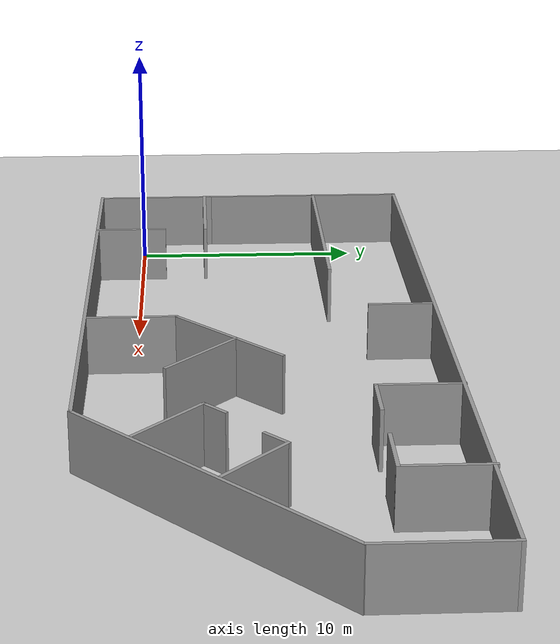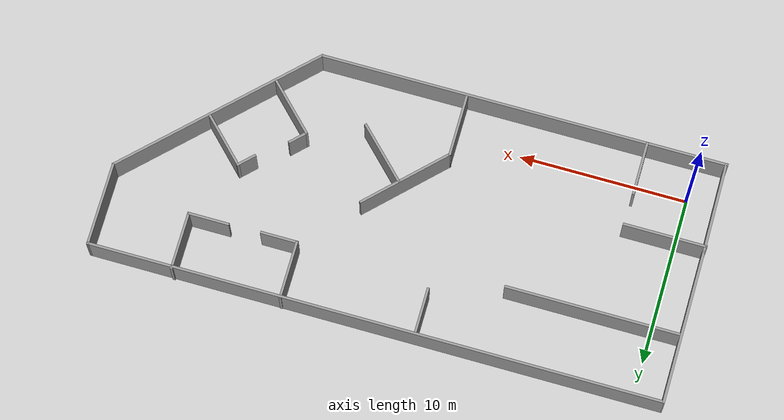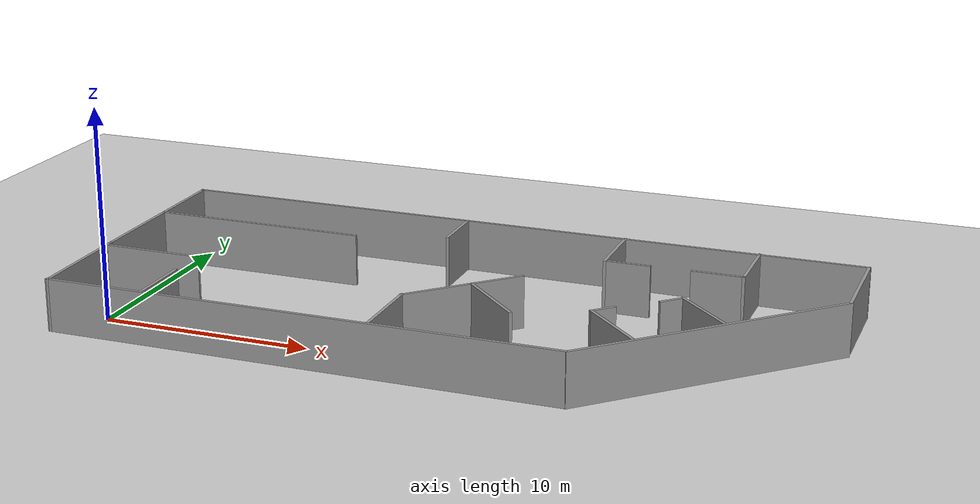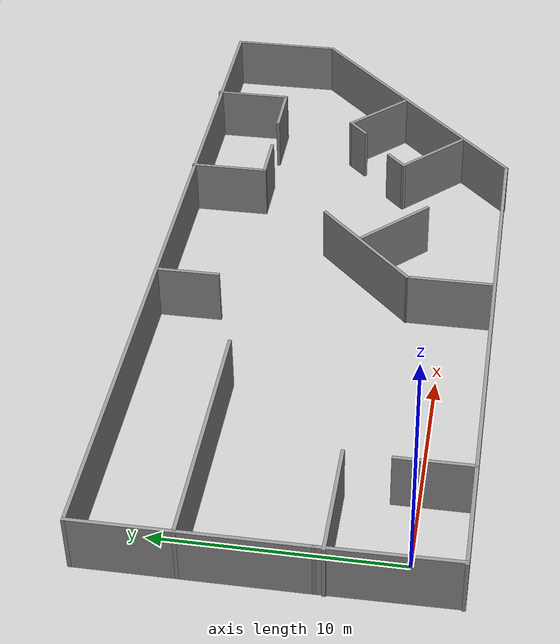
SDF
<sdf version="1.7">
 <world name="default">
  <model name="ground_plane">
   <static>1</static>
   <link name="link">
    <collision name="collision">
     <geometry><plane><normal>0 0 1</normal><size>100 100</size></plane></geometry>
     <surface>
      <contact><collide_bitmask>65535</collide_bitmask></contact>
      <friction><ode><mu>100</mu><mu2>50</mu2></ode></friction>
     </surface>
    </collision>
    <visual name="visual">
     <cast_shadows>0</cast_shadows>
     <geometry><plane><normal>0 0 1</normal><size>100 100</size></plane></geometry>
     <material>
      <script><uri>file://media/materials/scripts/gazebo.material</uri><name>Gazebo/Grey</name></script>
     </material>
    </visual>
   </link>
  </model>
  <light name="sun" type="directional">
   <pose>0 0 10 0 -0 0</pose>
   <diffuse>0.8 0.8 0.8 1</diffuse>
   <specular>0.2 0.2 0.2 1</specular>
   <attenuation>
    <range>1000</range>
    <constant>0.9</constant>
    <linear>0.01</linear>
    <quadratic>0.001</quadratic>
   </attenuation>
   <direction>-0.5 0.1 -0.9</direction>
   <spot><inner_angle>0</inner_angle><outer_angle>0</outer_angle><falloff>0</falloff></spot>
  </light>
  <spherical_coordinates>
   <surface_model>EARTH_WGS84</surface_model>
   <latitude_deg>47.3667</latitude_deg>
   <longitude_deg>8.55</longitude_deg>
   <elevation>500</elevation>
   <heading_deg>0</heading_deg>
  </spherical_coordinates>
  <physics type="ode">
   <ode>
    <solver>
     <type>quick</type>
     <iters>500</iters>
     <sor>1.3</sor>
     <use_dynamic_moi_rescaling>0</use_dynamic_moi_rescaling>
    </solver>
    <constraints>
     <cfm>0</cfm>
     <erp>0.2</erp>
     <contact_max_correcting_vel>100</contact_max_correcting_vel>
     <contact_surface_layer>0.001</contact_surface_layer>
    </constraints>
   </ode>
   <max_step_size>0.001</max_step_size>
   <real_time_factor>1</real_time_factor>
   <real_time_update_rate>1000</real_time_update_rate>
  </physics>
  <gravity>0 0 -9.8</gravity>
  <magnetic_field>6e-06 2.3e-05 -4.2e-05</magnetic_field>
  <atmosphere type="adiabatic"/>
  <scene><ambient>0.4 0.4 0.4 1</ambient><background>0.7 0.7 0.7 1</background><shadows>1</shadows></scene>
  <model name="environment6">
   <link name="Wall_12">
    <pose>-17.0013 2.66938 0 0 -0 1.5708</pose>
    <visual name="Wall_12_Visual">
     <pose>0 0 1.25 0 -0 0</pose>
     <geometry><box><size>9.25 0.15 2.5</size></box></geometry>
     <material>
      <script><uri>file://media/materials/scripts/gazebo.material</uri><name>Gazebo/Grey</name></script>
      <ambient>1 1 1 1</ambient>
      <shader type="pixel"/>
     </material>
     <meta><layer>0</layer></meta>
    </visual>
    <collision name="Wall_12_Collision">
     <pose>0 0 1.25 0 -0 0</pose>
     <geometry><box><size>9.25 0.15 2.5</size></box></geometry>
     <surface>
      <friction>
       <ode><mu>1</mu><mu2>1</mu2><fdir1>0 0 0</fdir1><slip1>0</slip1><slip2>0</slip2></ode>
       <torsional>
        <coefficient>1</coefficient>
        <patch_radius>0</patch_radius>
        <surface_radius>0</surface_radius>
        <use_patch_radius>1</use_patch_radius>
        <ode><slip>0</slip></ode>
       </torsional>
      </friction>
      <bounce><restitution_coefficient>0</restitution_coefficient><threshold>1e+06</threshold></bounce>
      <contact>
       <collide_without_contact>0</collide_without_contact>
       <collide_without_contact_bitmask>1</collide_without_contact_bitmask>
       <collide_bitmask>1</collide_bitmask>
       <ode>
        <soft_cfm>0</soft_cfm>
        <soft_erp>0.2</soft_erp>
        <kp>1e+13</kp>
        <kd>1</kd>
        <max_vel>0.01</max_vel>
        <min_depth>0</min_depth>
       </ode>
       <bullet>
        <split_impulse>1</split_impulse>
        <split_impulse_penetration_threshold>-0.01</split_impulse_penetration_threshold>
        <soft_cfm>0</soft_cfm>
        <soft_erp>0.2</soft_erp>
        <kp>1e+13</kp>
        <kd>1</kd>
       </bullet>
      </contact>
     </surface>
    </collision>
   </link>
   <link name="Wall_13">
    <pose>0.008656 7.22771 0 0 -0 0.000489</pose>
    <visual name="Wall_13_Visual">
     <pose>0 0 1.25 0 -0 0</pose>
     <geometry><box><size>34.1707 0.15 2.5</size></box></geometry>
     <material>
      <script><uri>file://media/materials/scripts/gazebo.material</uri><name>Gazebo/Grey</name></script>
      <ambient>1 1 1 1</ambient>
      <shader type="pixel"/>
     </material>
     <meta><layer>0</layer></meta>
    </visual>
    <collision name="Wall_13_Collision">
     <pose>0 0 1.25 0 -0 0</pose>
     <geometry><box><size>34.1707 0.15 2.5</size></box></geometry>
     <surface>
      <friction>
       <ode><mu>1</mu><mu2>1</mu2><fdir1>0 0 0</fdir1><slip1>0</slip1><slip2>0</slip2></ode>
       <torsional>
        <coefficient>1</coefficient>
        <patch_radius>0</patch_radius>
        <surface_radius>0</surface_radius>
        <use_patch_radius>1</use_patch_radius>
        <ode><slip>0</slip></ode>
       </torsional>
      </friction>
      <bounce><restitution_coefficient>0</restitution_coefficient><threshold>1e+06</threshold></bounce>
      <contact>
       <collide_without_contact>0</collide_without_contact>
       <collide_without_contact_bitmask>1</collide_without_contact_bitmask>
       <collide_bitmask>1</collide_bitmask>
       <ode>
        <soft_cfm>0</soft_cfm>
        <soft_erp>0.2</soft_erp>
        <kp>1e+13</kp>
        <kd>1</kd>
        <max_vel>0.01</max_vel>
        <min_depth>0</min_depth>
       </ode>
       <bullet>
        <split_impulse>1</split_impulse>
        <split_impulse_penetration_threshold>-0.01</split_impulse_penetration_threshold>
        <soft_cfm>0</soft_cfm>
        <soft_erp>0.2</soft_erp>
        <kp>1e+13</kp>
        <kd>1</kd>
       </bullet>
      </contact>
     </surface>
    </collision>
   </link>
   <link name="Wall_15">
    <pose>-14.6246 -2.23152 0 0 -0 0</pose>
    <visual name="Wall_15_Visual">
     <pose>0 0 1.25 0 -0 0</pose>
     <geometry><box><size>5 0.15 2.5</size></box></geometry>
     <material>
      <script><uri>file://media/materials/scripts/gazebo.material</uri><name>Gazebo/Grey</name></script>
      <ambient>1 1 1 1</ambient>
      <shader type="pixel"/>
     </material>
     <meta><layer>0</layer></meta>
    </visual>
    <collision name="Wall_15_Collision">
     <pose>0 0 1.25 0 -0 0</pose>
     <geometry><box><size>5 0.15 2.5</size></box></geometry>
     <surface>
      <friction>
       <ode><mu>1</mu><mu2>1</mu2><fdir1>0 0 0</fdir1><slip1>0</slip1><slip2>0</slip2></ode>
       <torsional>
        <coefficient>1</coefficient>
        <patch_radius>0</patch_radius>
        <surface_radius>0</surface_radius>
        <use_patch_radius>1</use_patch_radius>
        <ode><slip>0</slip></ode>
       </torsional>
      </friction>
      <bounce><restitution_coefficient>0</restitution_coefficient><threshold>1e+06</threshold></bounce>
      <contact>
       <collide_without_contact>0</collide_without_contact>
       <collide_without_contact_bitmask>1</collide_without_contact_bitmask>
       <collide_bitmask>1</collide_bitmask>
       <ode>
        <soft_cfm>0</soft_cfm>
        <soft_erp>0.2</soft_erp>
        <kp>1e+13</kp>
        <kd>1</kd>
        <max_vel>0.01</max_vel>
        <min_depth>0</min_depth>
       </ode>
       <bullet>
        <split_impulse>1</split_impulse>
        <split_impulse_penetration_threshold>-0.01</split_impulse_penetration_threshold>
        <soft_cfm>0</soft_cfm>
        <soft_erp>0.2</soft_erp>
        <kp>1e+13</kp>
        <kd>1</kd>
       </bullet>
      </contact>
     </surface>
    </collision>
   </link>
   <link name="Wall_18">
    <pose>-12.2496 -5.72152 0 0 -0 1.5708</pose>
    <visual name="Wall_18_Visual">
     <pose>0 0 1.25 0 -0 0</pose>
     <geometry><box><size>3.25 0.15 2.5</size></box></geometry>
     <material>
      <script><uri>file://media/materials/scripts/gazebo.material</uri><name>Gazebo/Grey</name></script>
      <ambient>1 1 1 1</ambient>
      <shader type="pixel"/>
     </material>
     <meta><layer>0</layer></meta>
    </visual>
    <collision name="Wall_18_Collision">
     <pose>0 0 1.25 0 -0 0</pose>
     <geometry><box><size>3.25 0.15 2.5</size></box></geometry>
     <surface>
      <friction>
       <ode><mu>1</mu><mu2>1</mu2><fdir1>0 0 0</fdir1><slip1>0</slip1><slip2>0</slip2></ode>
       <torsional>
        <coefficient>1</coefficient>
        <patch_radius>0</patch_radius>
        <surface_radius>0</surface_radius>
        <use_patch_radius>1</use_patch_radius>
        <ode><slip>0</slip></ode>
       </torsional>
      </friction>
      <bounce><restitution_coefficient>0</restitution_coefficient><threshold>1e+06</threshold></bounce>
      <contact>
       <collide_without_contact>0</collide_without_contact>
       <collide_without_contact_bitmask>1</collide_without_contact_bitmask>
       <collide_bitmask>1</collide_bitmask>
       <ode>
        <soft_cfm>0</soft_cfm>
        <soft_erp>0.2</soft_erp>
        <kp>1e+13</kp>
        <kd>1</kd>
        <max_vel>0.01</max_vel>
        <min_depth>0</min_depth>
       </ode>
       <bullet>
        <split_impulse>1</split_impulse>
        <split_impulse_penetration_threshold>-0.01</split_impulse_penetration_threshold>
        <soft_cfm>0</soft_cfm>
        <soft_erp>0.2</soft_erp>
        <kp>1e+13</kp>
        <kd>1</kd>
       </bullet>
      </contact>
     </surface>
    </collision>
   </link>
   <link name="Wall_20">
    <pose>-11.8269 3.17824 0 0 -0 0</pose>
    <visual name="Wall_20_Visual">
     <pose>0 0 1.25 0 -0 0</pose>
     <geometry><box><size>10.5 0.15 2.5</size></box></geometry>
     <material>
      <script><uri>file://media/materials/scripts/gazebo.material</uri><name>Gazebo/Grey</name></script>
      <ambient>1 1 1 1</ambient>
      <shader type="pixel"/>
     </material>
     <meta><layer>0</layer></meta>
    </visual>
    <collision name="Wall_20_Collision">
     <pose>0 0 1.25 0 -0 0</pose>
     <geometry><box><size>10.5 0.15 2.5</size></box></geometry>
     <surface>
      <friction>
       <ode><mu>1</mu><mu2>1</mu2><fdir1>0 0 0</fdir1><slip1>0</slip1><slip2>0</slip2></ode>
       <torsional>
        <coefficient>1</coefficient>
        <patch_radius>0</patch_radius>
        <surface_radius>0</surface_radius>
        <use_patch_radius>1</use_patch_radius>
        <ode><slip>0</slip></ode>
       </torsional>
      </friction>
      <bounce><restitution_coefficient>0</restitution_coefficient><threshold>1e+06</threshold></bounce>
      <contact>
       <collide_without_contact>0</collide_without_contact>
       <collide_without_contact_bitmask>1</collide_without_contact_bitmask>
       <collide_bitmask>1</collide_bitmask>
       <ode>
        <soft_cfm>0</soft_cfm>
        <soft_erp>0.2</soft_erp>
        <kp>1e+13</kp>
        <kd>1</kd>
        <max_vel>0.01</max_vel>
        <min_depth>0</min_depth>
       </ode>
       <bullet>
        <split_impulse>1</split_impulse>
        <split_impulse_penetration_threshold>-0.01</split_impulse_penetration_threshold>
        <soft_cfm>0</soft_cfm>
        <soft_erp>0.2</soft_erp>
        <kp>1e+13</kp>
        <kd>1</kd>
       </bullet>
      </contact>
     </surface>
    </collision>
   </link>
   <link name="Wall_24">
    <pose>-2.43231 5.82806 0 0 -0 1.5708</pose>
    <visual name="Wall_24_Visual">
     <pose>0 0 1.25 0 -0 0</pose>
     <geometry><box><size>2.75 0.15 2.5</size></box></geometry>
     <material>
      <script><uri>file://media/materials/scripts/gazebo.material</uri><name>Gazebo/Grey</name></script>
      <ambient>1 1 1 1</ambient>
      <shader type="pixel"/>
     </material>
     <meta><layer>0</layer></meta>
    </visual>
    <collision name="Wall_24_Collision">
     <pose>0 0 1.25 0 -0 0</pose>
     <geometry><box><size>2.75 0.15 2.5</size></box></geometry>
     <surface>
      <friction>
       <ode><mu>1</mu><mu2>1</mu2><fdir1>0 0 0</fdir1><slip1>0</slip1><slip2>0</slip2></ode>
       <torsional>
        <coefficient>1</coefficient>
        <patch_radius>0</patch_radius>
        <surface_radius>0</surface_radius>
        <use_patch_radius>1</use_patch_radius>
        <ode><slip>0</slip></ode>
       </torsional>
      </friction>
      <bounce><restitution_coefficient>0</restitution_coefficient><threshold>1e+06</threshold></bounce>
      <contact>
       <collide_without_contact>0</collide_without_contact>
       <collide_without_contact_bitmask>1</collide_without_contact_bitmask>
       <collide_bitmask>1</collide_bitmask>
       <ode>
        <soft_cfm>0</soft_cfm>
        <soft_erp>0.2</soft_erp>
        <kp>1e+13</kp>
        <kd>1</kd>
        <max_vel>0.01</max_vel>
        <min_depth>0</min_depth>
       </ode>
       <bullet>
        <split_impulse>1</split_impulse>
        <split_impulse_penetration_threshold>-0.01</split_impulse_penetration_threshold>
        <soft_cfm>0</soft_cfm>
        <soft_erp>0.2</soft_erp>
        <kp>1e+13</kp>
        <kd>1</kd>
       </bullet>
      </contact>
     </surface>
    </collision>
   </link>
   <link name="Wall_3">
    <pose>-16.9747 -4.58222 0 0 -0 1.58064</pose>
    <visual name="Wall_3_Visual">
     <pose>0 0 1.25 0 -0 0</pose>
     <geometry><box><size>5.55425 0.15 2.5</size></box></geometry>
     <material>
      <script><uri>file://media/materials/scripts/gazebo.material</uri><name>Gazebo/Grey</name></script>
      <ambient>1 1 1 1</ambient>
      <shader type="pixel"/>
     </material>
     <meta><layer>0</layer></meta>
    </visual>
    <collision name="Wall_3_Collision">
     <pose>0 0 1.25 0 -0 0</pose>
     <geometry><box><size>5.55425 0.15 2.5</size></box></geometry>
     <surface>
      <friction>
       <ode><mu>1</mu><mu2>1</mu2><fdir1>0 0 0</fdir1><slip1>0</slip1><slip2>0</slip2></ode>
       <torsional>
        <coefficient>1</coefficient>
        <patch_radius>0</patch_radius>
        <surface_radius>0</surface_radius>
        <use_patch_radius>1</use_patch_radius>
        <ode><slip>0</slip></ode>
       </torsional>
      </friction>
      <bounce><restitution_coefficient>0</restitution_coefficient><threshold>1e+06</threshold></bounce>
      <contact>
       <collide_without_contact>0</collide_without_contact>
       <collide_without_contact_bitmask>1</collide_without_contact_bitmask>
       <collide_bitmask>1</collide_bitmask>
       <ode>
        <soft_cfm>0</soft_cfm>
        <soft_erp>0.2</soft_erp>
        <kp>1e+13</kp>
        <kd>1</kd>
        <max_vel>0.01</max_vel>
        <min_depth>0</min_depth>
       </ode>
       <bullet>
        <split_impulse>1</split_impulse>
        <split_impulse_penetration_threshold>-0.01</split_impulse_penetration_threshold>
        <soft_cfm>0</soft_cfm>
        <soft_erp>0.2</soft_erp>
        <kp>1e+13</kp>
        <kd>1</kd>
       </bullet>
      </contact>
     </surface>
    </collision>
   </link>
   <link name="Wall_39">
    <pose>-1.46686 -5.33781 0 0 -0 1.5708</pose>
    <visual name="Wall_39_Visual">
     <pose>0 0 1.25 0 -0 0</pose>
     <geometry><box><size>3.75 0.15 2.5</size></box></geometry>
     <material>
      <script><uri>file://media/materials/scripts/gazebo.material</uri><name>Gazebo/Grey</name></script>
      <ambient>1 1 1 1</ambient>
      <shader type="pixel"/>
     </material>
     <meta><layer>0</layer></meta>
    </visual>
    <collision name="Wall_39_Collision">
     <pose>0 0 1.25 0 -0 0</pose>
     <geometry><box><size>3.75 0.15 2.5</size></box></geometry>
     <surface>
      <friction>
       <ode><mu>1</mu><mu2>1</mu2><fdir1>0 0 0</fdir1><slip1>0</slip1><slip2>0</slip2></ode>
       <torsional>
        <coefficient>1</coefficient>
        <patch_radius>0</patch_radius>
        <surface_radius>0</surface_radius>
        <use_patch_radius>1</use_patch_radius>
        <ode><slip>0</slip></ode>
       </torsional>
      </friction>
      <bounce><restitution_coefficient>0</restitution_coefficient><threshold>1e+06</threshold></bounce>
      <contact>
       <collide_without_contact>0</collide_without_contact>
       <collide_without_contact_bitmask>1</collide_without_contact_bitmask>
       <collide_bitmask>1</collide_bitmask>
       <ode>
        <soft_cfm>0</soft_cfm>
        <soft_erp>0.2</soft_erp>
        <kp>1e+13</kp>
        <kd>1</kd>
        <max_vel>0.01</max_vel>
        <min_depth>0</min_depth>
       </ode>
       <bullet>
        <split_impulse>1</split_impulse>
        <split_impulse_penetration_threshold>-0.01</split_impulse_penetration_threshold>
        <soft_cfm>0</soft_cfm>
        <soft_erp>0.2</soft_erp>
        <kp>1e+13</kp>
        <kd>1</kd>
       </bullet>
      </contact>
     </surface>
    </collision>
   </link>
   <link name="Wall_40">
    <pose>0.601431 -1.46952 0 0 -0 0.785398</pose>
    <visual name="Wall_40_Visual">
     <pose>0 0 1.25 0 -0 0</pose>
     <geometry><box><size>6 0.15 2.5</size></box></geometry>
     <material>
      <script><uri>file://media/materials/scripts/gazebo.material</uri><name>Gazebo/Grey</name></script>
      <ambient>1 1 1 1</ambient>
      <shader type="pixel"/>
     </material>
     <meta><layer>0</layer></meta>
    </visual>
    <collision name="Wall_40_Collision">
     <pose>0 0 1.25 0 -0 0</pose>
     <geometry><box><size>6 0.15 2.5</size></box></geometry>
     <surface>
      <friction>
       <ode><mu>1</mu><mu2>1</mu2><fdir1>0 0 0</fdir1><slip1>0</slip1><slip2>0</slip2></ode>
       <torsional>
        <coefficient>1</coefficient>
        <patch_radius>0</patch_radius>
        <surface_radius>0</surface_radius>
        <use_patch_radius>1</use_patch_radius>
        <ode><slip>0</slip></ode>
       </torsional>
      </friction>
      <bounce><restitution_coefficient>0</restitution_coefficient><threshold>1e+06</threshold></bounce>
      <contact>
       <collide_without_contact>0</collide_without_contact>
       <collide_without_contact_bitmask>1</collide_without_contact_bitmask>
       <collide_bitmask>1</collide_bitmask>
       <ode>
        <soft_cfm>0</soft_cfm>
        <soft_erp>0.2</soft_erp>
        <kp>1e+13</kp>
        <kd>1</kd>
        <max_vel>0.01</max_vel>
        <min_depth>0</min_depth>
       </ode>
       <bullet>
        <split_impulse>1</split_impulse>
        <split_impulse_penetration_threshold>-0.01</split_impulse_penetration_threshold>
        <soft_cfm>0</soft_cfm>
        <soft_erp>0.2</soft_erp>
        <kp>1e+13</kp>
        <kd>1</kd>
       </bullet>
      </contact>
     </surface>
    </collision>
   </link>
   <link name="Wall_42">
    <pose>2.30795 -2.54537 0 0 0 -0.785398</pose>
    <visual name="Wall_42_Visual">
     <pose>0 0 1.25 0 -0 0</pose>
     <geometry><box><size>4 0.15 2.5</size></box></geometry>
     <material>
      <script><uri>file://media/materials/scripts/gazebo.material</uri><name>Gazebo/Grey</name></script>
      <ambient>1 1 1 1</ambient>
      <shader type="pixel"/>
     </material>
     <meta><layer>0</layer></meta>
    </visual>
    <collision name="Wall_42_Collision">
     <pose>0 0 1.25 0 -0 0</pose>
     <geometry><box><size>4 0.15 2.5</size></box></geometry>
     <surface>
      <friction>
       <ode><mu>1</mu><mu2>1</mu2><fdir1>0 0 0</fdir1><slip1>0</slip1><slip2>0</slip2></ode>
       <torsional>
        <coefficient>1</coefficient>
        <patch_radius>0</patch_radius>
        <surface_radius>0</surface_radius>
        <use_patch_radius>1</use_patch_radius>
        <ode><slip>0</slip></ode>
       </torsional>
      </friction>
      <bounce><restitution_coefficient>0</restitution_coefficient><threshold>1e+06</threshold></bounce>
      <contact>
       <collide_without_contact>0</collide_without_contact>
       <collide_without_contact_bitmask>1</collide_without_contact_bitmask>
       <collide_bitmask>1</collide_bitmask>
       <ode>
        <soft_cfm>0</soft_cfm>
        <soft_erp>0.2</soft_erp>
        <kp>1e+13</kp>
        <kd>1</kd>
        <max_vel>0.01</max_vel>
        <min_depth>0</min_depth>
       </ode>
       <bullet>
        <split_impulse>1</split_impulse>
        <split_impulse_penetration_threshold>-0.01</split_impulse_penetration_threshold>
        <soft_cfm>0</soft_cfm>
        <soft_erp>0.2</soft_erp>
        <kp>1e+13</kp>
        <kd>1</kd>
       </bullet>
      </contact>
     </surface>
    </collision>
   </link>
   <link name="Wall_44">
    <pose>5.53267 5.58851 0 0 0 -1.5708</pose>
    <visual name="Wall_44_Visual">
     <pose>0 0 1.25 0 -0 0</pose>
     <geometry><box><size>3.5 0.15 2.5</size></box></geometry>
     <material>
      <script><uri>file://media/materials/scripts/gazebo.material</uri><name>Gazebo/Grey</name></script>
      <ambient>1 1 1 1</ambient>
      <shader type="pixel"/>
     </material>
     <meta><layer>0</layer></meta>
    </visual>
    <collision name="Wall_44_Collision">
     <pose>0 0 1.25 0 -0 0</pose>
     <geometry><box><size>3.5 0.15 2.5</size></box></geometry>
     <surface>
      <friction>
       <ode><mu>1</mu><mu2>1</mu2><fdir1>0 0 0</fdir1><slip1>0</slip1><slip2>0</slip2></ode>
       <torsional>
        <coefficient>1</coefficient>
        <patch_radius>0</patch_radius>
        <surface_radius>0</surface_radius>
        <use_patch_radius>1</use_patch_radius>
        <ode><slip>0</slip></ode>
       </torsional>
      </friction>
      <bounce><restitution_coefficient>0</restitution_coefficient><threshold>1e+06</threshold></bounce>
      <contact>
       <collide_without_contact>0</collide_without_contact>
       <collide_without_contact_bitmask>1</collide_without_contact_bitmask>
       <collide_bitmask>1</collide_bitmask>
       <ode>
        <soft_cfm>0</soft_cfm>
        <soft_erp>0.2</soft_erp>
        <kp>1e+13</kp>
        <kd>1</kd>
        <max_vel>0.01</max_vel>
        <min_depth>0</min_depth>
       </ode>
       <bullet>
        <split_impulse>1</split_impulse>
        <split_impulse_penetration_threshold>-0.01</split_impulse_penetration_threshold>
        <soft_cfm>0</soft_cfm>
        <soft_erp>0.2</soft_erp>
        <kp>1e+13</kp>
        <kd>1</kd>
       </bullet>
      </contact>
     </surface>
    </collision>
   </link>
   <link name="Wall_45">
    <pose>6.58267 3.91351 0 0 -0 0</pose>
    <visual name="Wall_45_Visual">
     <pose>0 0 1.25 0 -0 0</pose>
     <geometry><box><size>2.25 0.15 2.5</size></box></geometry>
     <material>
      <script><uri>file://media/materials/scripts/gazebo.material</uri><name>Gazebo/Grey</name></script>
      <ambient>1 1 1 1</ambient>
      <shader type="pixel"/>
     </material>
     <meta><layer>0</layer></meta>
    </visual>
    <collision name="Wall_45_Collision">
     <pose>0 0 1.25 0 -0 0</pose>
     <geometry><box><size>2.25 0.15 2.5</size></box></geometry>
     <surface>
      <friction>
       <ode><mu>1</mu><mu2>1</mu2><fdir1>0 0 0</fdir1><slip1>0</slip1><slip2>0</slip2></ode>
       <torsional>
        <coefficient>1</coefficient>
        <patch_radius>0</patch_radius>
        <surface_radius>0</surface_radius>
        <use_patch_radius>1</use_patch_radius>
        <ode><slip>0</slip></ode>
       </torsional>
      </friction>
      <bounce><restitution_coefficient>0</restitution_coefficient><threshold>1e+06</threshold></bounce>
      <contact>
       <collide_without_contact>0</collide_without_contact>
       <collide_without_contact_bitmask>1</collide_without_contact_bitmask>
       <collide_bitmask>1</collide_bitmask>
       <ode>
        <soft_cfm>0</soft_cfm>
        <soft_erp>0.2</soft_erp>
        <kp>1e+13</kp>
        <kd>1</kd>
        <max_vel>0.01</max_vel>
        <min_depth>0</min_depth>
       </ode>
       <bullet>
        <split_impulse>1</split_impulse>
        <split_impulse_penetration_threshold>-0.01</split_impulse_penetration_threshold>
        <soft_cfm>0</soft_cfm>
        <soft_erp>0.2</soft_erp>
        <kp>1e+13</kp>
        <kd>1</kd>
       </bullet>
      </contact>
     </surface>
    </collision>
   </link>
   <link name="Wall_48">
    <pose>10.8108 3.96488 0 0 -0 0</pose>
    <visual name="Wall_48_Visual">
     <pose>0 0 1.25 0 -0 0</pose>
     <geometry><box><size>2.5 0.15 2.5</size></box></geometry>
     <material>
      <script><uri>file://media/materials/scripts/gazebo.material</uri><name>Gazebo/Grey</name></script>
      <ambient>1 1 1 1</ambient>
      <shader type="pixel"/>
     </material>
     <meta><layer>0</layer></meta>
    </visual>
    <collision name="Wall_48_Collision">
     <pose>0 0 1.25 0 -0 0</pose>
     <geometry><box><size>2.5 0.15 2.5</size></box></geometry>
     <surface>
      <friction>
       <ode><mu>1</mu><mu2>1</mu2><fdir1>0 0 0</fdir1><slip1>0</slip1><slip2>0</slip2></ode>
       <torsional>
        <coefficient>1</coefficient>
        <patch_radius>0</patch_radius>
        <surface_radius>0</surface_radius>
        <use_patch_radius>1</use_patch_radius>
        <ode><slip>0</slip></ode>
       </torsional>
      </friction>
      <bounce><restitution_coefficient>0</restitution_coefficient><threshold>1e+06</threshold></bounce>
      <contact>
       <collide_without_contact>0</collide_without_contact>
       <collide_without_contact_bitmask>1</collide_without_contact_bitmask>
       <collide_bitmask>1</collide_bitmask>
       <ode>
        <soft_cfm>0</soft_cfm>
        <soft_erp>0.2</soft_erp>
        <kp>1e+13</kp>
        <kd>1</kd>
        <max_vel>0.01</max_vel>
        <min_depth>0</min_depth>
       </ode>
       <bullet>
        <split_impulse>1</split_impulse>
        <split_impulse_penetration_threshold>-0.01</split_impulse_penetration_threshold>
        <soft_cfm>0</soft_cfm>
        <soft_erp>0.2</soft_erp>
        <kp>1e+13</kp>
        <kd>1</kd>
       </bullet>
      </contact>
     </surface>
    </collision>
   </link>
   <link name="Wall_49">
    <pose>11.9858 5.63988 0 0 -0 1.5708</pose>
    <visual name="Wall_49_Visual">
     <pose>0 0 1.25 0 -0 0</pose>
     <geometry><box><size>3.5 0.15 2.5</size></box></geometry>
     <material>
      <script><uri>file://media/materials/scripts/gazebo.material</uri><name>Gazebo/Grey</name></script>
      <ambient>1 1 1 1</ambient>
      <shader type="pixel"/>
     </material>
     <meta><layer>0</layer></meta>
    </visual>
    <collision name="Wall_49_Collision">
     <pose>0 0 1.25 0 -0 0</pose>
     <geometry><box><size>3.5 0.15 2.5</size></box></geometry>
     <surface>
      <friction>
       <ode><mu>1</mu><mu2>1</mu2><fdir1>0 0 0</fdir1><slip1>0</slip1><slip2>0</slip2></ode>
       <torsional>
        <coefficient>1</coefficient>
        <patch_radius>0</patch_radius>
        <surface_radius>0</surface_radius>
        <use_patch_radius>1</use_patch_radius>
        <ode><slip>0</slip></ode>
       </torsional>
      </friction>
      <bounce><restitution_coefficient>0</restitution_coefficient><threshold>1e+06</threshold></bounce>
      <contact>
       <collide_without_contact>0</collide_without_contact>
       <collide_without_contact_bitmask>1</collide_without_contact_bitmask>
       <collide_bitmask>1</collide_bitmask>
       <ode>
        <soft_cfm>0</soft_cfm>
        <soft_erp>0.2</soft_erp>
        <kp>1e+13</kp>
        <kd>1</kd>
        <max_vel>0.01</max_vel>
        <min_depth>0</min_depth>
       </ode>
       <bullet>
        <split_impulse>1</split_impulse>
        <split_impulse_penetration_threshold>-0.01</split_impulse_penetration_threshold>
        <soft_cfm>0</soft_cfm>
        <soft_erp>0.2</soft_erp>
        <kp>1e+13</kp>
        <kd>1</kd>
       </bullet>
      </contact>
     </surface>
    </collision>
   </link>
   <link name="Wall_53">
    <pose>8.12168 -3.7732 0 0 -0 2.35619</pose>
    <visual name="Wall_53_Visual">
     <pose>0 0 1.25 0 -0 0</pose>
     <geometry><box><size>3.75 0.15 2.5</size></box></geometry>
     <material>
      <script><uri>file://media/materials/scripts/gazebo.material</uri><name>Gazebo/Grey</name></script>
      <ambient>1 1 1 1</ambient>
      <shader type="pixel"/>
     </material>
     <meta><layer>0</layer></meta>
    </visual>
    <collision name="Wall_53_Collision">
     <pose>0 0 1.25 0 -0 0</pose>
     <geometry><box><size>3.75 0.15 2.5</size></box></geometry>
     <surface>
      <friction>
       <ode><mu>1</mu><mu2>1</mu2><fdir1>0 0 0</fdir1><slip1>0</slip1><slip2>0</slip2></ode>
       <torsional>
        <coefficient>1</coefficient>
        <patch_radius>0</patch_radius>
        <surface_radius>0</surface_radius>
        <use_patch_radius>1</use_patch_radius>
        <ode><slip>0</slip></ode>
       </torsional>
      </friction>
      <bounce><restitution_coefficient>0</restitution_coefficient><threshold>1e+06</threshold></bounce>
      <contact>
       <collide_without_contact>0</collide_without_contact>
       <collide_without_contact_bitmask>1</collide_without_contact_bitmask>
       <collide_bitmask>1</collide_bitmask>
       <ode>
        <soft_cfm>0</soft_cfm>
        <soft_erp>0.2</soft_erp>
        <kp>1e+13</kp>
        <kd>1</kd>
        <max_vel>0.01</max_vel>
        <min_depth>0</min_depth>
       </ode>
       <bullet>
        <split_impulse>1</split_impulse>
        <split_impulse_penetration_threshold>-0.01</split_impulse_penetration_threshold>
        <soft_cfm>0</soft_cfm>
        <soft_erp>0.2</soft_erp>
        <kp>1e+13</kp>
        <kd>1</kd>
       </bullet>
      </contact>
     </surface>
    </collision>
   </link>
   <link name="Wall_54">
    <pose>7.2378 -2.1115 0 0 -0 0.785398</pose>
    <visual name="Wall_54_Visual">
     <pose>0 0 1.25 0 -0 0</pose>
     <geometry><box><size>1.25 0.15 2.5</size></box></geometry>
     <material>
      <script><uri>file://media/materials/scripts/gazebo.material</uri><name>Gazebo/Grey</name></script>
      <ambient>1 1 1 1</ambient>
      <shader type="pixel"/>
     </material>
     <meta><layer>0</layer></meta>
    </visual>
    <collision name="Wall_54_Collision">
     <pose>0 0 1.25 0 -0 0</pose>
     <geometry><box><size>1.25 0.15 2.5</size></box></geometry>
     <surface>
      <friction>
       <ode><mu>1</mu><mu2>1</mu2><fdir1>0 0 0</fdir1><slip1>0</slip1><slip2>0</slip2></ode>
       <torsional>
        <coefficient>1</coefficient>
        <patch_radius>0</patch_radius>
        <surface_radius>0</surface_radius>
        <use_patch_radius>1</use_patch_radius>
        <ode><slip>0</slip></ode>
       </torsional>
      </friction>
      <bounce><restitution_coefficient>0</restitution_coefficient><threshold>1e+06</threshold></bounce>
      <contact>
       <collide_without_contact>0</collide_without_contact>
       <collide_without_contact_bitmask>1</collide_without_contact_bitmask>
       <collide_bitmask>1</collide_bitmask>
       <ode>
        <soft_cfm>0</soft_cfm>
        <soft_erp>0.2</soft_erp>
        <kp>1e+13</kp>
        <kd>1</kd>
        <max_vel>0.01</max_vel>
        <min_depth>0</min_depth>
       </ode>
       <bullet>
        <split_impulse>1</split_impulse>
        <split_impulse_penetration_threshold>-0.01</split_impulse_penetration_threshold>
        <soft_cfm>0</soft_cfm>
        <soft_erp>0.2</soft_erp>
        <kp>1e+13</kp>
        <kd>1</kd>
       </bullet>
      </contact>
     </surface>
    </collision>
   </link>
   <link name="Wall_6">
    <pose>-4.87947 -7.28382 0 0 -0 0</pose>
    <visual name="Wall_6_Visual">
     <pose>0 0 1.25 0 -0 0</pose>
     <geometry><box><size>24.3936 0.15 2.5</size></box></geometry>
     <material>
      <script><uri>file://media/materials/scripts/gazebo.material</uri><name>Gazebo/Grey</name></script>
      <ambient>1 1 1 1</ambient>
      <shader type="pixel"/>
     </material>
     <meta><layer>0</layer></meta>
    </visual>
    <collision name="Wall_6_Collision">
     <pose>0 0 1.25 0 -0 0</pose>
     <geometry><box><size>24.3936 0.15 2.5</size></box></geometry>
     <surface>
      <friction>
       <ode><mu>1</mu><mu2>1</mu2><fdir1>0 0 0</fdir1><slip1>0</slip1><slip2>0</slip2></ode>
       <torsional>
        <coefficient>1</coefficient>
        <patch_radius>0</patch_radius>
        <surface_radius>0</surface_radius>
        <use_patch_radius>1</use_patch_radius>
        <ode><slip>0</slip></ode>
       </torsional>
      </friction>
      <bounce><restitution_coefficient>0</restitution_coefficient><threshold>1e+06</threshold></bounce>
      <contact>
       <collide_without_contact>0</collide_without_contact>
       <collide_without_contact_bitmask>1</collide_without_contact_bitmask>
       <collide_bitmask>1</collide_bitmask>
       <ode>
        <soft_cfm>0</soft_cfm>
        <soft_erp>0.2</soft_erp>
        <kp>1e+13</kp>
        <kd>1</kd>
        <max_vel>0.01</max_vel>
        <min_depth>0</min_depth>
       </ode>
       <bullet>
        <split_impulse>1</split_impulse>
        <split_impulse_penetration_threshold>-0.01</split_impulse_penetration_threshold>
        <soft_cfm>0</soft_cfm>
        <soft_erp>0.2</soft_erp>
        <kp>1e+13</kp>
        <kd>1</kd>
       </bullet>
      </contact>
     </surface>
    </collision>
   </link>
   <link name="Wall_7">
    <pose>12.1571 -2.47549 0 0 -0 0.779897</pose>
    <visual name="Wall_7_Visual">
     <pose>0 0 1.25 0 -0 0</pose>
     <geometry><box><size>13.8254 0.15 2.5</size></box></geometry>
     <material>
      <script><uri>file://media/materials/scripts/gazebo.material</uri><name>Gazebo/Grey</name></script>
      <ambient>1 1 1 1</ambient>
      <shader type="pixel"/>
     </material>
     <meta><layer>0</layer></meta>
    </visual>
    <collision name="Wall_7_Collision">
     <pose>0 0 1.25 0 -0 0</pose>
     <geometry><box><size>13.8254 0.15 2.5</size></box></geometry>
     <surface>
      <friction>
       <ode><mu>1</mu><mu2>1</mu2><fdir1>0 0 0</fdir1><slip1>0</slip1><slip2>0</slip2></ode>
       <torsional>
        <coefficient>1</coefficient>
        <patch_radius>0</patch_radius>
        <surface_radius>0</surface_radius>
        <use_patch_radius>1</use_patch_radius>
        <ode><slip>0</slip></ode>
       </torsional>
      </friction>
      <bounce><restitution_coefficient>0</restitution_coefficient><threshold>1e+06</threshold></bounce>
      <contact>
       <collide_without_contact>0</collide_without_contact>
       <collide_without_contact_bitmask>1</collide_without_contact_bitmask>
       <collide_bitmask>1</collide_bitmask>
       <ode>
        <soft_cfm>0</soft_cfm>
        <soft_erp>0.2</soft_erp>
        <kp>1e+13</kp>
        <kd>1</kd>
        <max_vel>0.01</max_vel>
        <min_depth>0</min_depth>
       </ode>
       <bullet>
        <split_impulse>1</split_impulse>
        <split_impulse_penetration_threshold>-0.01</split_impulse_penetration_threshold>
        <soft_cfm>0</soft_cfm>
        <soft_erp>0.2</soft_erp>
        <kp>1e+13</kp>
        <kd>1</kd>
       </bullet>
      </contact>
     </surface>
    </collision>
   </link>
   <link name="Wall_8">
    <pose>17.0186 4.81103 0 0 -0 1.5708</pose>
    <visual name="Wall_8_Visual">
     <pose>0 0 1.25 0 -0 0</pose>
     <geometry><box><size>5 0.15 2.5</size></box></geometry>
     <material>
      <script><uri>file://media/materials/scripts/gazebo.material</uri><name>Gazebo/Grey</name></script>
      <ambient>1 1 1 1</ambient>
      <shader type="pixel"/>
     </material>
     <meta><layer>0</layer></meta>
    </visual>
    <collision name="Wall_8_Collision">
     <pose>0 0 1.25 0 -0 0</pose>
     <geometry><box><size>5 0.15 2.5</size></box></geometry>
     <surface>
      <friction>
       <ode><mu>1</mu><mu2>1</mu2><fdir1>0 0 0</fdir1><slip1>0</slip1><slip2>0</slip2></ode>
       <torsional>
        <coefficient>1</coefficient>
        <patch_radius>0</patch_radius>
        <surface_radius>0</surface_radius>
        <use_patch_radius>1</use_patch_radius>
        <ode><slip>0</slip></ode>
       </torsional>
      </friction>
      <bounce><restitution_coefficient>0</restitution_coefficient><threshold>1e+06</threshold></bounce>
      <contact>
       <collide_without_contact>0</collide_without_contact>
       <collide_without_contact_bitmask>1</collide_without_contact_bitmask>
       <collide_bitmask>1</collide_bitmask>
       <ode>
        <soft_cfm>0</soft_cfm>
        <soft_erp>0.2</soft_erp>
        <kp>1e+13</kp>
        <kd>1</kd>
        <max_vel>0.01</max_vel>
        <min_depth>0</min_depth>
       </ode>
       <bullet>
        <split_impulse>1</split_impulse>
        <split_impulse_penetration_threshold>-0.01</split_impulse_penetration_threshold>
        <soft_cfm>0</soft_cfm>
        <soft_erp>0.2</soft_erp>
        <kp>1e+13</kp>
        <kd>1</kd>
       </bullet>
      </contact>
     </surface>
    </collision>
   </link>
   <link name="Wall_80">
    <pose>9.72502 0.010613 0 0 -0 0.785398</pose>
    <visual name="Wall_80_Visual">
     <pose>0 0 1.25 0 -0 0</pose>
     <geometry><box><size>1.25 0.15 2.5</size></box></geometry>
     <material>
      <script><uri>file://media/materials/scripts/gazebo.material</uri><name>Gazebo/Grey</name></script>
      <ambient>1 1 1 1</ambient>
      <shader type="pixel"/>
     </material>
     <meta><layer>0</layer></meta>
    </visual>
    <collision name="Wall_80_Collision">
     <pose>0 0 1.25 0 -0 0</pose>
     <geometry><box><size>1.25 0.15 2.5</size></box></geometry>
     <surface>
      <friction>
       <ode><mu>1</mu><mu2>1</mu2><fdir1>0 0 0</fdir1><slip1>0</slip1><slip2>0</slip2></ode>
       <torsional>
        <coefficient>1</coefficient>
        <patch_radius>0</patch_radius>
        <surface_radius>0</surface_radius>
        <use_patch_radius>1</use_patch_radius>
        <ode><slip>0</slip></ode>
       </torsional>
      </friction>
      <bounce><restitution_coefficient>0</restitution_coefficient><threshold>1e+06</threshold></bounce>
      <contact>
       <collide_without_contact>0</collide_without_contact>
       <collide_without_contact_bitmask>1</collide_without_contact_bitmask>
       <collide_bitmask>1</collide_bitmask>
       <ode>
        <soft_cfm>0</soft_cfm>
        <soft_erp>0.2</soft_erp>
        <kp>1e+13</kp>
        <kd>1</kd>
        <max_vel>0.01</max_vel>
        <min_depth>0</min_depth>
       </ode>
       <bullet>
        <split_impulse>1</split_impulse>
        <split_impulse_penetration_threshold>-0.01</split_impulse_penetration_threshold>
        <soft_cfm>0</soft_cfm>
        <soft_erp>0.2</soft_erp>
        <kp>1e+13</kp>
        <kd>1</kd>
       </bullet>
      </contact>
     </surface>
    </collision>
   </link>
   <link name="Wall_81">
    <pose>11.2983 -0.784882 0 0 0 -0.785398</pose>
    <visual name="Wall_81_Visual">
     <pose>0 0 1.25 0 -0 0</pose>
     <geometry><box><size>3.5 0.15 2.5</size></box></geometry>
     <material>
      <script><uri>file://media/materials/scripts/gazebo.material</uri><name>Gazebo/Grey</name></script>
      <ambient>1 1 1 1</ambient>
      <shader type="pixel"/>
     </material>
     <meta><layer>0</layer></meta>
    </visual>
    <collision name="Wall_81_Collision">
     <pose>0 0 1.25 0 -0 0</pose>
     <geometry><box><size>3.5 0.15 2.5</size></box></geometry>
     <surface>
      <friction>
       <ode><mu>1</mu><mu2>1</mu2><fdir1>0 0 0</fdir1><slip1>0</slip1><slip2>0</slip2></ode>
       <torsional>
        <coefficient>1</coefficient>
        <patch_radius>0</patch_radius>
        <surface_radius>0</surface_radius>
        <use_patch_radius>1</use_patch_radius>
        <ode><slip>0</slip></ode>
       </torsional>
      </friction>
      <bounce><restitution_coefficient>0</restitution_coefficient><threshold>1e+06</threshold></bounce>
      <contact>
       <collide_without_contact>0</collide_without_contact>
       <collide_without_contact_bitmask>1</collide_without_contact_bitmask>
       <collide_bitmask>1</collide_bitmask>
       <ode>
        <soft_cfm>0</soft_cfm>
        <soft_erp>0.2</soft_erp>
        <kp>1e+13</kp>
        <kd>1</kd>
        <max_vel>0.01</max_vel>
        <min_depth>0</min_depth>
       </ode>
       <bullet>
        <split_impulse>1</split_impulse>
        <split_impulse_penetration_threshold>-0.01</split_impulse_penetration_threshold>
        <soft_cfm>0</soft_cfm>
        <soft_erp>0.2</soft_erp>
        <kp>1e+13</kp>
        <kd>1</kd>
       </bullet>
      </contact>
     </surface>
    </collision>
   </link>
   <static>1</static>
   <pose>15.2998 5.19929 0 0 -0 0</pose>
  </model>
 </world>
</sdf>
